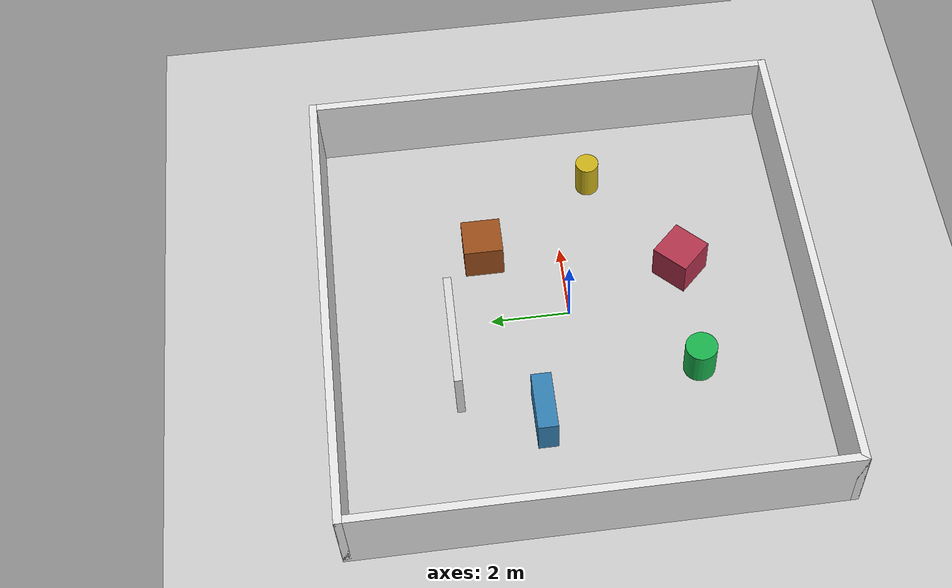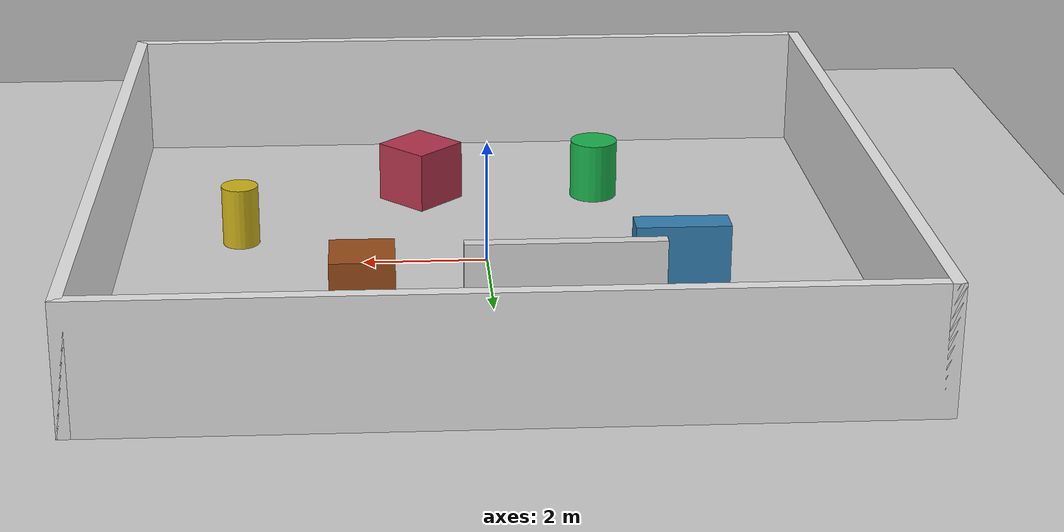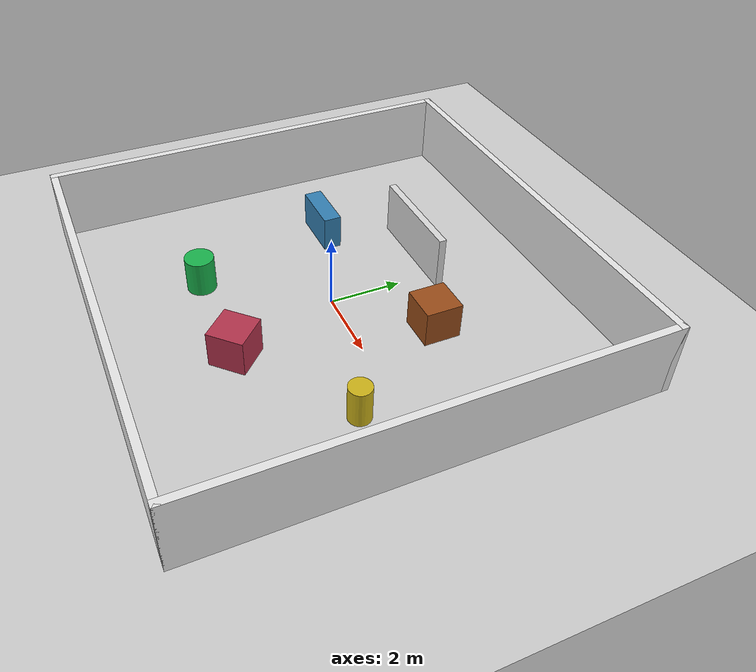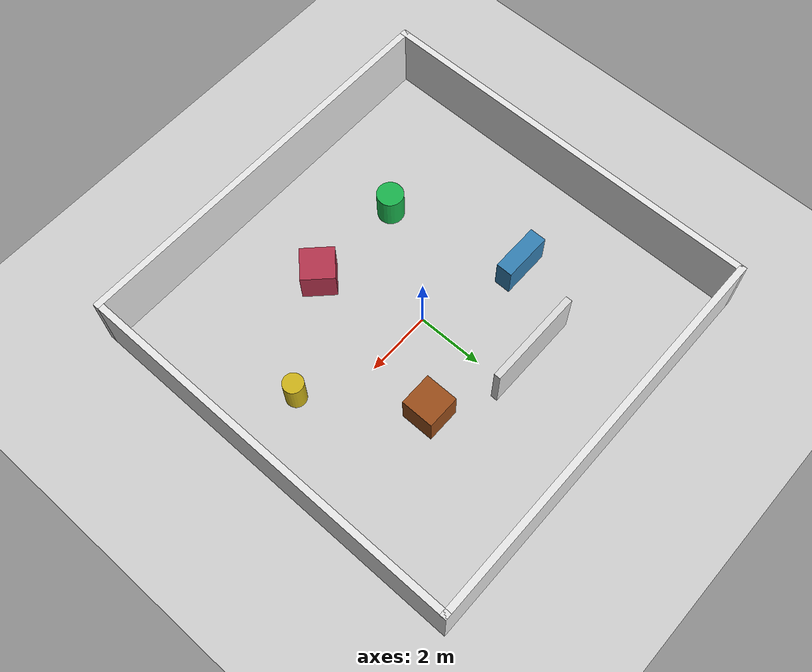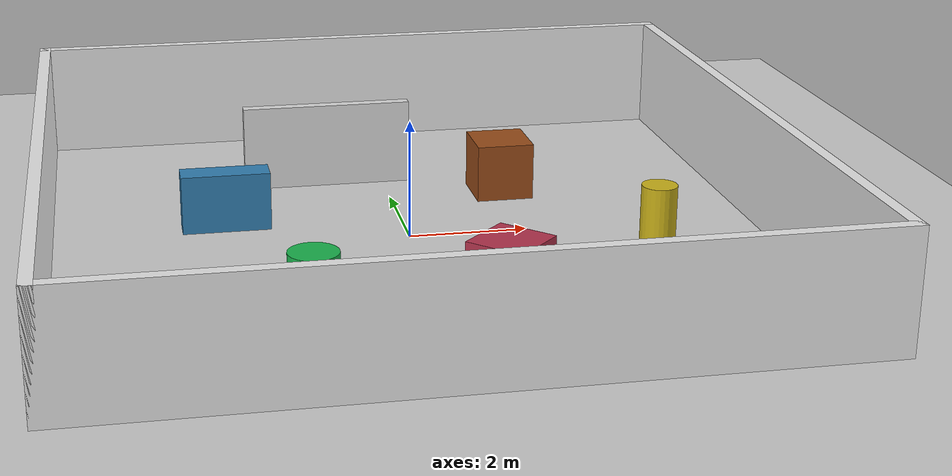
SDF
<?xml version="1.0"?>
<!--
  World: simple_room
  A 12x12 m enclosed room with scattered obstacles.
  Good starting map for SLAM exploration.
-->
<sdf version="1.9">
  <world name="simple_room">

    <!-- ============ Physics ============ -->
    <physics name="1ms" type="ignored">
      <max_step_size>0.001</max_step_size>
      <real_time_factor>1.0</real_time_factor>
    </physics>

    <!-- ============ Plugins ============ -->
    <plugin filename="gz-sim-physics-system"
            name="gz::sim::systems::Physics"/>
    <plugin filename="gz-sim-user-commands-system"
            name="gz::sim::systems::UserCommands"/>
    <plugin filename="gz-sim-scene-broadcaster-system"
            name="gz::sim::systems::SceneBroadcaster"/>
    <plugin filename="gz-sim-sensors-system"
            name="gz::sim::systems::Sensors">
      <render_engine>ogre2</render_engine>
    </plugin>
    <plugin filename="gz-sim-imu-system"
            name="gz::sim::systems::Imu"/>

    <!-- ============ Sky / Lighting ============ -->
    <light type="directional" name="sun">
      <cast_shadows>true</cast_shadows>
      <pose>0 0 10 0 0 0</pose>
      <diffuse>0.8 0.8 0.8 1</diffuse>
      <specular>0.2 0.2 0.2 1</specular>
      <attenuation>
        <range>1000</range>
        <constant>0.9</constant>
        <linear>0.01</linear>
        <quadratic>0.001</quadratic>
      </attenuation>
      <direction>-0.5 0.1 -0.9</direction>
    </light>

    <!-- ============ Ground Plane ============ -->
    <model name="ground_plane">
      <static>true</static>
      <link name="link">
        <collision name="collision">
          <geometry>
            <plane><normal>0 0 1</normal><size>100 100</size></plane>
          </geometry>
        </collision>
        <visual name="visual">
          <geometry>
            <plane><normal>0 0 1</normal><size>100 100</size></plane>
          </geometry>
          <material>
            <ambient>0.8 0.8 0.8 1</ambient>
            <diffuse>0.8 0.8 0.8 1</diffuse>
            <specular>0.8 0.8 0.8 1</specular>
          </material>
        </visual>
      </link>
    </model>

    <!-- ============ Outer Walls ============ -->
    <!-- South wall -->
    <model name="wall_south">
      <static>true</static>
      <pose>0 -6 1 0 0 0</pose>
      <link name="link">
        <collision name="collision">
          <geometry><box><size>12.2 0.2 2</size></box></geometry>
        </collision>
        <visual name="visual">
          <geometry><box><size>12.2 0.2 2</size></box></geometry>
          <material><ambient>0.9 0.9 0.9 1</ambient><diffuse>0.9 0.9 0.9 1</diffuse></material>
        </visual>
      </link>
    </model>

    <!-- North wall -->
    <model name="wall_north">
      <static>true</static>
      <pose>0 6 1 0 0 0</pose>
      <link name="link">
        <collision name="collision">
          <geometry><box><size>12.2 0.2 2</size></box></geometry>
        </collision>
        <visual name="visual">
          <geometry><box><size>12.2 0.2 2</size></box></geometry>
          <material><ambient>0.9 0.9 0.9 1</ambient><diffuse>0.9 0.9 0.9 1</diffuse></material>
        </visual>
      </link>
    </model>

    <!-- West wall -->
    <model name="wall_west">
      <static>true</static>
      <pose>-6 0 1 0 0 0</pose>
      <link name="link">
        <collision name="collision">
          <geometry><box><size>0.2 12.2 2</size></box></geometry>
        </collision>
        <visual name="visual">
          <geometry><box><size>0.2 12.2 2</size></box></geometry>
          <material><ambient>0.9 0.9 0.9 1</ambient><diffuse>0.9 0.9 0.9 1</diffuse></material>
        </visual>
      </link>
    </model>

    <!-- East wall -->
    <model name="wall_east">
      <static>true</static>
      <pose>6 0 1 0 0 0</pose>
      <link name="link">
        <collision name="collision">
          <geometry><box><size>0.2 12.2 2</size></box></geometry>
        </collision>
        <visual name="visual">
          <geometry><box><size>0.2 12.2 2</size></box></geometry>
          <material><ambient>0.9 0.9 0.9 1</ambient><diffuse>0.9 0.9 0.9 1</diffuse></material>
        </visual>
      </link>
    </model>

    <!-- ============ Interior Obstacles ============ -->
    <model name="box1">
      <static>true</static>
      <pose>2 2 0.5 0 0 0</pose>
      <link name="link">
        <collision name="collision"><geometry><box><size>1 1 1</size></box></geometry></collision>
        <visual name="visual">
          <geometry><box><size>1 1 1</size></box></geometry>
          <material><ambient>0.6 0.3 0.1 1</ambient><diffuse>0.6 0.3 0.1 1</diffuse></material>
        </visual>
      </link>
    </model>

    <model name="box2">
      <static>true</static>
      <pose>-3 1 0.5 0 0 0</pose>
      <link name="link">
        <collision name="collision"><geometry><box><size>1.5 0.5 1</size></box></geometry></collision>
        <visual name="visual">
          <geometry><box><size>1.5 0.5 1</size></box></geometry>
          <material><ambient>0.2 0.5 0.7 1</ambient><diffuse>0.2 0.5 0.7 1</diffuse></material>
        </visual>
      </link>
    </model>

    <model name="box3">
      <static>true</static>
      <pose>1 -3 0.5 0 0 0.785</pose>
      <link name="link">
        <collision name="collision"><geometry><box><size>1 1 1</size></box></geometry></collision>
        <visual name="visual">
          <geometry><box><size>1 1 1</size></box></geometry>
          <material><ambient>0.7 0.2 0.3 1</ambient><diffuse>0.7 0.2 0.3 1</diffuse></material>
        </visual>
      </link>
    </model>

    <model name="cylinder1">
      <static>true</static>
      <pose>-2 -3 0.5 0 0 0</pose>
      <link name="link">
        <collision name="collision"><geometry><cylinder><radius>0.4</radius><length>1</length></cylinder></geometry></collision>
        <visual name="visual">
          <geometry><cylinder><radius>0.4</radius><length>1</length></cylinder></geometry>
          <material><ambient>0.1 0.7 0.3 1</ambient><diffuse>0.1 0.7 0.3 1</diffuse></material>
        </visual>
      </link>
    </model>

    <model name="cylinder2">
      <static>true</static>
      <pose>4 -1 0.5 0 0 0</pose>
      <link name="link">
        <collision name="collision"><geometry><cylinder><radius>0.3</radius><length>1</length></cylinder></geometry></collision>
        <visual name="visual">
          <geometry><cylinder><radius>0.3</radius><length>1</length></cylinder></geometry>
          <material><ambient>0.8 0.7 0.1 1</ambient><diffuse>0.8 0.7 0.1 1</diffuse></material>
        </visual>
      </link>
    </model>

    <model name="wall_inner1">
      <static>true</static>
      <pose>-1 3 0.75 0 0 0</pose>
      <link name="link">
        <collision name="collision"><geometry><box><size>3 0.2 1.5</size></box></geometry></collision>
        <visual name="visual">
          <geometry><box><size>3 0.2 1.5</size></box></geometry>
          <material><ambient>0.85 0.85 0.85 1</ambient><diffuse>0.85 0.85 0.85 1</diffuse></material>
        </visual>
      </link>
    </model>

  </world>
</sdf>
